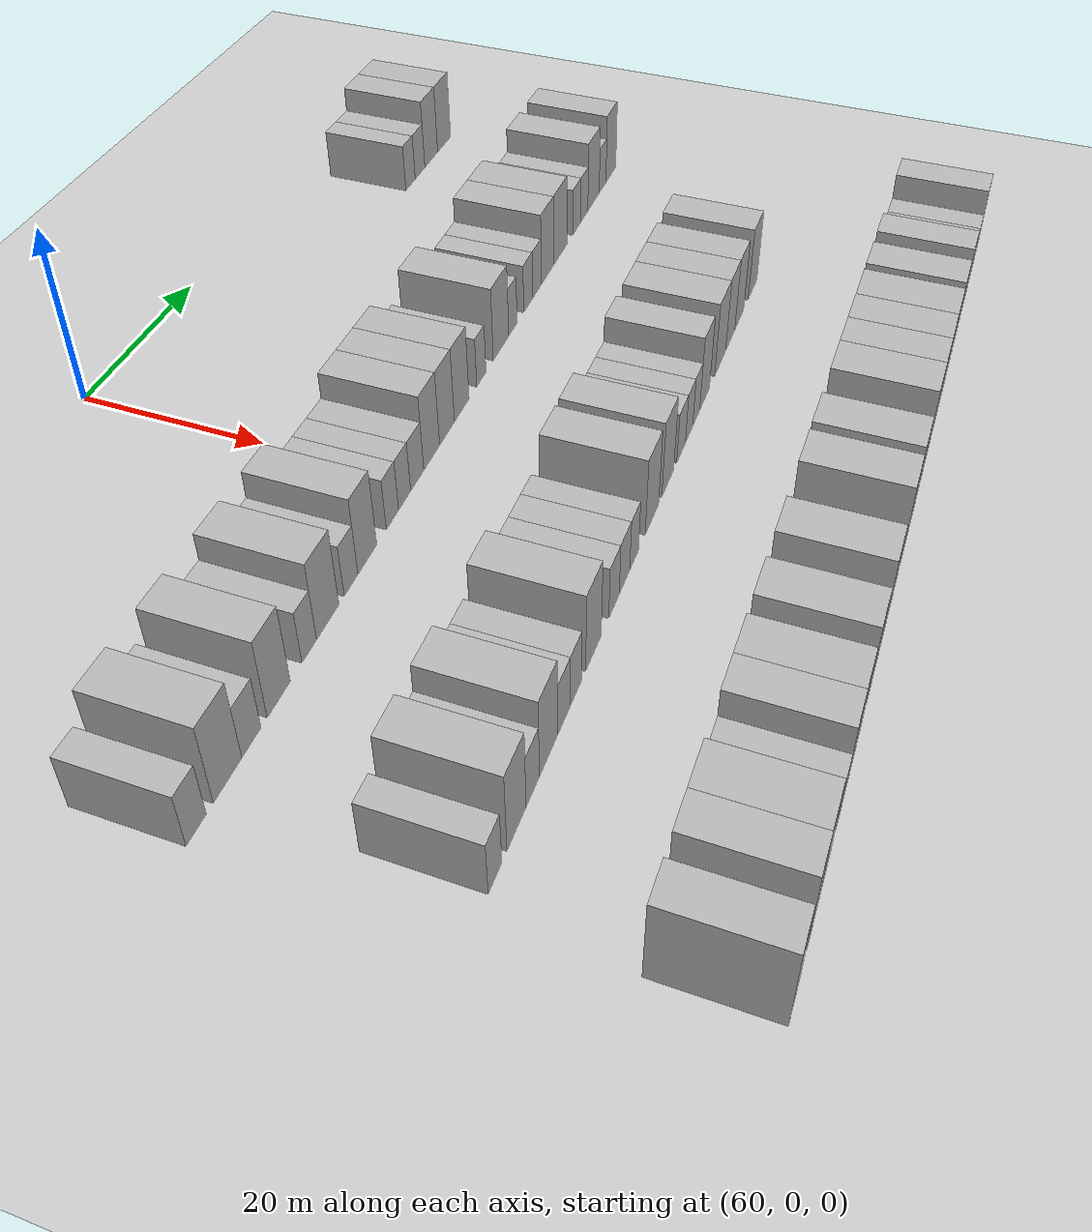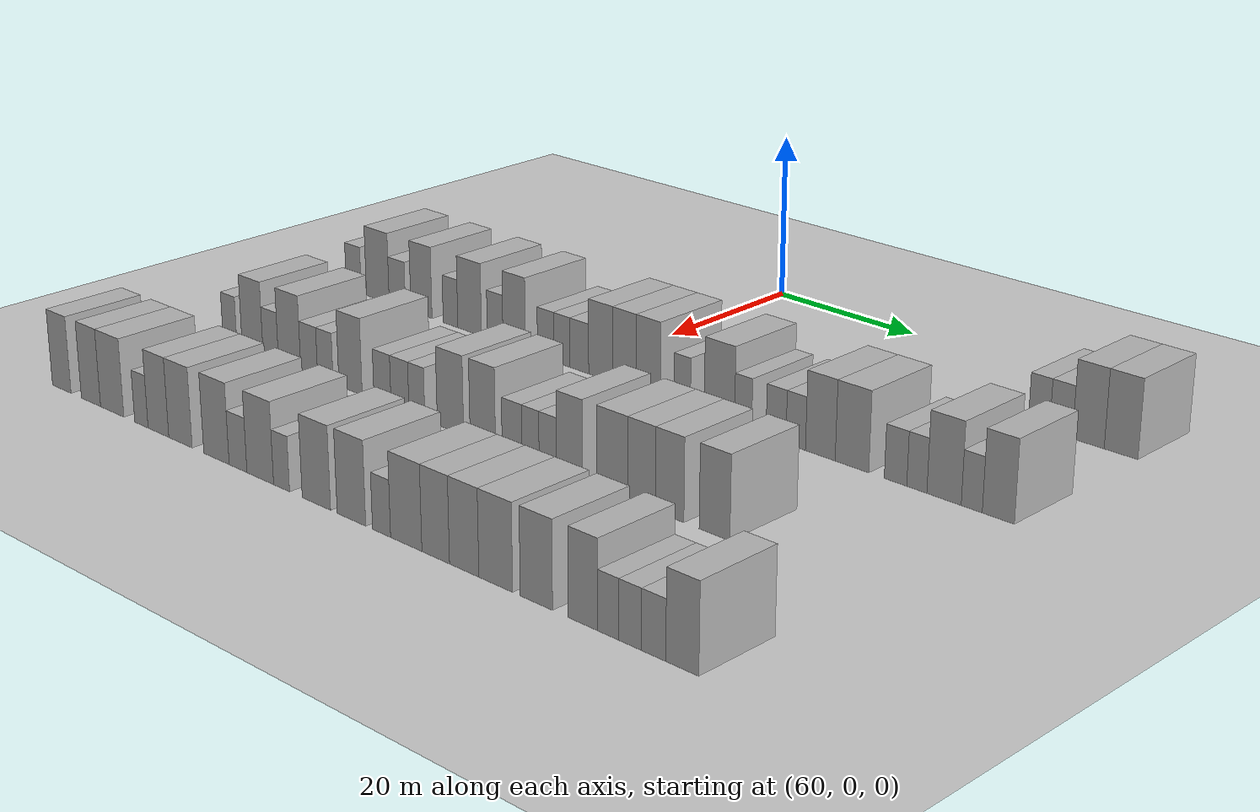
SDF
<sdf version="1.6">
 <world name="default">
  <include>
   <name>ground_plane_2</name>
   <uri>model://HANNAS_ground_plane</uri>
   <pose>100 0 0  0 0 0</pose>
  </include>
  <model name="building_463">
   <static>1</static>
   <pose>69.0000 47.3261 0 0.000000 0.000000 0.000000</pose>
   <link name="link">
    <pose>0 0 3.00 0 0 0</pose>
    <collision name="collision"><geometry><box><size>10.0000 2.7117 6.0000</size></box></geometry></collision>
    <visual name="visual">
     <cast_shadows>0</cast_shadows>
     <geometry><box><size>10.0000 2.7117 6.0000</size></box></geometry>
     <material>
      <script>
       <uri>model://HANNAS_wall/materials/scripts</uri>
       <uri>model://HANNAS_wall/materials/textures</uri>
       <name>vrc/HANNAS_wall</name>
      </script>
     </material>
    </visual>
   </link>
  </model>
  <model name="building_464">
   <static>1</static>
   <pose>69.0000 50.1178 0 0.000000 0.000000 0.000000</pose>
   <link name="link">
    <pose>0 0 3.00 0 0 0</pose>
    <collision name="collision"><geometry><box><size>10.0000 2.8716 6.0000</size></box></geometry></collision>
    <visual name="visual">
     <cast_shadows>0</cast_shadows>
     <geometry><box><size>10.0000 2.8716 6.0000</size></box></geometry>
     <material>
      <script>
       <uri>model://HANNAS_wall/materials/scripts</uri>
       <uri>model://HANNAS_wall/materials/textures</uri>
       <name>vrc/HANNAS_wall</name>
      </script>
     </material>
    </visual>
   </link>
  </model>
  <model name="building_465">
   <static>1</static>
   <pose>69.0000 53.5137 0 0.000000 0.000000 0.000000</pose>
   <link name="link">
    <pose>0 0 4.50 0 0 0</pose>
    <collision name="collision"><geometry><box><size>10.0000 3.9201 9.0000</size></box></geometry></collision>
    <visual name="visual">
     <cast_shadows>0</cast_shadows>
     <geometry><box><size>10.0000 3.9201 9.0000</size></box></geometry>
     <material>
      <script>
       <uri>model://HANNAS_wall/materials/scripts</uri>
       <uri>model://HANNAS_wall/materials/textures</uri>
       <name>vrc/HANNAS_wall</name>
      </script>
     </material>
    </visual>
   </link>
  </model>
  <model name="building_466">
   <static>1</static>
   <pose>69.0000 57.5067 0 0.000000 0.000000 0.000000</pose>
   <link name="link">
    <pose>0 0 4.50 0 0 0</pose>
    <collision name="collision"><geometry><box><size>10.0000 4.0660 9.0000</size></box></geometry></collision>
    <visual name="visual">
     <cast_shadows>0</cast_shadows>
     <geometry><box><size>10.0000 4.0660 9.0000</size></box></geometry>
     <material>
      <script>
       <uri>model://HANNAS_wall/materials/scripts</uri>
       <uri>model://HANNAS_wall/materials/textures</uri>
       <name>vrc/HANNAS_wall</name>
      </script>
     </material>
    </visual>
   </link>
  </model>
  <model name="building_632">
   <static>1</static>
   <pose>91.0000 -39.1412 0 0.000000 0.000000 0.000000</pose>
   <link name="link">
    <pose>0 0 3.00 0 0 0</pose>
    <collision name="collision"><geometry><box><size>10.0000 2.8521 6.0000</size></box></geometry></collision>
    <visual name="visual">
     <cast_shadows>0</cast_shadows>
     <geometry><box><size>10.0000 2.8521 6.0000</size></box></geometry>
     <material>
      <script>
       <uri>model://HANNAS_wall/materials/scripts</uri>
       <uri>model://HANNAS_wall/materials/textures</uri>
       <name>vrc/HANNAS_wall</name>
      </script>
     </material>
    </visual>
   </link>
  </model>
  <model name="building_633">
   <static>1</static>
   <pose>91.0000 -34.5886 0 0.000000 0.000000 0.000000</pose>
   <link name="link">
    <pose>0 0 4.50 0 0 0</pose>
    <collision name="collision"><geometry><box><size>10.0000 4.2531 9.0000</size></box></geometry></collision>
    <visual name="visual">
     <cast_shadows>0</cast_shadows>
     <geometry><box><size>10.0000 4.2531 9.0000</size></box></geometry>
     <material>
      <script>
       <uri>model://HANNAS_wall/materials/scripts</uri>
       <uri>model://HANNAS_wall/materials/textures</uri>
       <name>vrc/HANNAS_wall</name>
      </script>
     </material>
    </visual>
   </link>
  </model>
  <model name="building_634">
   <static>1</static>
   <pose>91.0000 -30.9627 0 0.000000 0.000000 0.000000</pose>
   <link name="link">
    <pose>0 0 3.00 0 0 0</pose>
    <collision name="collision"><geometry><box><size>10.0000 2.9988 6.0000</size></box></geometry></collision>
    <visual name="visual">
     <cast_shadows>0</cast_shadows>
     <geometry><box><size>10.0000 2.9988 6.0000</size></box></geometry>
     <material>
      <script>
       <uri>model://HANNAS_wall/materials/scripts</uri>
       <uri>model://HANNAS_wall/materials/textures</uri>
       <name>vrc/HANNAS_wall</name>
      </script>
     </material>
    </visual>
   </link>
  </model>
  <model name="building_635">
   <static>1</static>
   <pose>91.0000 -26.5580 0 0.000000 0.000000 0.000000</pose>
   <link name="link">
    <pose>0 0 4.50 0 0 0</pose>
    <collision name="collision"><geometry><box><size>10.0000 3.8105 9.0000</size></box></geometry></collision>
    <visual name="visual">
     <cast_shadows>0</cast_shadows>
     <geometry><box><size>10.0000 3.8105 9.0000</size></box></geometry>
     <material>
      <script>
       <uri>model://HANNAS_wall/materials/scripts</uri>
       <uri>model://HANNAS_wall/materials/textures</uri>
       <name>vrc/HANNAS_wall</name>
      </script>
     </material>
    </visual>
   </link>
  </model>
  <model name="building_636">
   <static>1</static>
   <pose>91.0000 -21.3630 0 0.000000 0.000000 0.000000</pose>
   <link name="link">
    <pose>0 0 3.00 0 0 0</pose>
    <collision name="collision"><geometry><box><size>10.0000 2.5795 6.0000</size></box></geometry></collision>
    <visual name="visual">
     <cast_shadows>0</cast_shadows>
     <geometry><box><size>10.0000 2.5795 6.0000</size></box></geometry>
     <material>
      <script>
       <uri>model://HANNAS_wall/materials/scripts</uri>
       <uri>model://HANNAS_wall/materials/textures</uri>
       <name>vrc/HANNAS_wall</name>
      </script>
     </material>
    </visual>
   </link>
  </model>
  <model name="building_637">
   <static>1</static>
   <pose>91.0000 -18.0189 0 0.000000 0.000000 0.000000</pose>
   <link name="link">
    <pose>0 0 4.50 0 0 0</pose>
    <collision name="collision"><geometry><box><size>10.0000 4.1087 9.0000</size></box></geometry></collision>
    <visual name="visual">
     <cast_shadows>0</cast_shadows>
     <geometry><box><size>10.0000 4.1087 9.0000</size></box></geometry>
     <material>
      <script>
       <uri>model://HANNAS_wall/materials/scripts</uri>
       <uri>model://HANNAS_wall/materials/textures</uri>
       <name>vrc/HANNAS_wall</name>
      </script>
     </material>
    </visual>
   </link>
  </model>
  <model name="building_638">
   <static>1</static>
   <pose>91.0000 -13.6319 0 0.000000 0.000000 0.000000</pose>
   <link name="link">
    <pose>0 0 3.00 0 0 0</pose>
    <collision name="collision"><geometry><box><size>10.0000 2.6653 6.0000</size></box></geometry></collision>
    <visual name="visual">
     <cast_shadows>0</cast_shadows>
     <geometry><box><size>10.0000 2.6653 6.0000</size></box></geometry>
     <material>
      <script>
       <uri>model://HANNAS_wall/materials/scripts</uri>
       <uri>model://HANNAS_wall/materials/textures</uri>
       <name>vrc/HANNAS_wall</name>
      </script>
     </material>
    </visual>
   </link>
  </model>
  <model name="building_639">
   <static>1</static>
   <pose>91.0000 -10.4184 0 0.000000 0.000000 0.000000</pose>
   <link name="link">
    <pose>0 0 4.50 0 0 0</pose>
    <collision name="collision"><geometry><box><size>10.0000 3.7618 9.0000</size></box></geometry></collision>
    <visual name="visual">
     <cast_shadows>0</cast_shadows>
     <geometry><box><size>10.0000 3.7618 9.0000</size></box></geometry>
     <material>
      <script>
       <uri>model://HANNAS_wall/materials/scripts</uri>
       <uri>model://HANNAS_wall/materials/textures</uri>
       <name>vrc/HANNAS_wall</name>
      </script>
     </material>
    </visual>
   </link>
  </model>
  <model name="building_640">
   <static>1</static>
   <pose>91.0000 -5.2221 0 0.000000 0.000000 0.000000</pose>
   <link name="link">
    <pose>0 0 3.00 0 0 0</pose>
    <collision name="collision"><geometry><box><size>10.0000 2.6308 6.0000</size></box></geometry></collision>
    <visual name="visual">
     <cast_shadows>0</cast_shadows>
     <geometry><box><size>10.0000 2.6308 6.0000</size></box></geometry>
     <material>
      <script>
       <uri>model://HANNAS_wall/materials/scripts</uri>
       <uri>model://HANNAS_wall/materials/textures</uri>
       <name>vrc/HANNAS_wall</name>
      </script>
     </material>
    </visual>
   </link>
  </model>
  <model name="building_641">
   <static>1</static>
   <pose>91.0000 -2.5835 0 0.000000 0.000000 0.000000</pose>
   <link name="link">
    <pose>0 0 3.00 0 0 0</pose>
    <collision name="collision"><geometry><box><size>10.0000 2.6464 6.0000</size></box></geometry></collision>
    <visual name="visual">
     <cast_shadows>0</cast_shadows>
     <geometry><box><size>10.0000 2.6464 6.0000</size></box></geometry>
     <material>
      <script>
       <uri>model://HANNAS_wall/materials/scripts</uri>
       <uri>model://HANNAS_wall/materials/textures</uri>
       <name>vrc/HANNAS_wall</name>
      </script>
     </material>
    </visual>
   </link>
  </model>
  <model name="building_642">
   <static>1</static>
   <pose>91.0000 0.2250 0 0.000000 0.000000 0.000000</pose>
   <link name="link">
    <pose>0 0 3.00 0 0 0</pose>
    <collision name="collision"><geometry><box><size>10.0000 2.9705 6.0000</size></box></geometry></collision>
    <visual name="visual">
     <cast_shadows>0</cast_shadows>
     <geometry><box><size>10.0000 2.9705 6.0000</size></box></geometry>
     <material>
      <script>
       <uri>model://HANNAS_wall/materials/scripts</uri>
       <uri>model://HANNAS_wall/materials/textures</uri>
       <name>vrc/HANNAS_wall</name>
      </script>
     </material>
    </visual>
   </link>
  </model>
  <model name="building_643">
   <static>1</static>
   <pose>91.0000 3.5686 0 0.000000 0.000000 0.000000</pose>
   <link name="link">
    <pose>0 0 4.50 0 0 0</pose>
    <collision name="collision"><geometry><box><size>10.0000 3.7167 9.0000</size></box></geometry></collision>
    <visual name="visual">
     <cast_shadows>0</cast_shadows>
     <geometry><box><size>10.0000 3.7167 9.0000</size></box></geometry>
     <material>
      <script>
       <uri>model://HANNAS_wall/materials/scripts</uri>
       <uri>model://HANNAS_wall/materials/textures</uri>
       <name>vrc/HANNAS_wall</name>
      </script>
     </material>
    </visual>
   </link>
  </model>
  <model name="building_644">
   <static>1</static>
   <pose>91.0000 7.2337 0 0.000000 0.000000 0.000000</pose>
   <link name="link">
    <pose>0 0 4.50 0 0 0</pose>
    <collision name="collision"><geometry><box><size>10.0000 3.6136 9.0000</size></box></geometry></collision>
    <visual name="visual">
     <cast_shadows>0</cast_shadows>
     <geometry><box><size>10.0000 3.6136 9.0000</size></box></geometry>
     <material>
      <script>
       <uri>model://HANNAS_wall/materials/scripts</uri>
       <uri>model://HANNAS_wall/materials/textures</uri>
       <name>vrc/HANNAS_wall</name>
      </script>
     </material>
    </visual>
   </link>
  </model>
  <model name="building_645">
   <static>1</static>
   <pose>91.0000 10.8877 0 0.000000 0.000000 0.000000</pose>
   <link name="link">
    <pose>0 0 4.50 0 0 0</pose>
    <collision name="collision"><geometry><box><size>10.0000 3.6944 9.0000</size></box></geometry></collision>
    <visual name="visual">
     <cast_shadows>0</cast_shadows>
     <geometry><box><size>10.0000 3.6944 9.0000</size></box></geometry>
     <material>
      <script>
       <uri>model://HANNAS_wall/materials/scripts</uri>
       <uri>model://HANNAS_wall/materials/textures</uri>
       <name>vrc/HANNAS_wall</name>
      </script>
     </material>
    </visual>
   </link>
  </model>
  <model name="building_646">
   <static>1</static>
   <pose>91.0000 15.9579 0 0.000000 0.000000 0.000000</pose>
   <link name="link">
    <pose>0 0 3.00 0 0 0</pose>
    <collision name="collision"><geometry><box><size>10.0000 2.4459 6.0000</size></box></geometry></collision>
    <visual name="visual">
     <cast_shadows>0</cast_shadows>
     <geometry><box><size>10.0000 2.4459 6.0000</size></box></geometry>
     <material>
      <script>
       <uri>model://HANNAS_wall/materials/scripts</uri>
       <uri>model://HANNAS_wall/materials/textures</uri>
       <name>vrc/HANNAS_wall</name>
      </script>
     </material>
    </visual>
   </link>
  </model>
  <model name="building_647">
   <static>1</static>
   <pose>91.0000 21.3521 0 0.000000 0.000000 0.000000</pose>
   <link name="link">
    <pose>0 0 4.50 0 0 0</pose>
    <collision name="collision"><geometry><box><size>10.0000 4.3426 9.0000</size></box></geometry></collision>
    <visual name="visual">
     <cast_shadows>0</cast_shadows>
     <geometry><box><size>10.0000 4.3426 9.0000</size></box></geometry>
     <material>
      <script>
       <uri>model://HANNAS_wall/materials/scripts</uri>
       <uri>model://HANNAS_wall/materials/textures</uri>
       <name>vrc/HANNAS_wall</name>
      </script>
     </material>
    </visual>
   </link>
  </model>
  <model name="building_648">
   <static>1</static>
   <pose>91.0000 24.7327 0 0.000000 0.000000 0.000000</pose>
   <link name="link">
    <pose>0 0 3.00 0 0 0</pose>
    <collision name="collision"><geometry><box><size>10.0000 2.4187 6.0000</size></box></geometry></collision>
    <visual name="visual">
     <cast_shadows>0</cast_shadows>
     <geometry><box><size>10.0000 2.4187 6.0000</size></box></geometry>
     <material>
      <script>
       <uri>model://HANNAS_wall/materials/scripts</uri>
       <uri>model://HANNAS_wall/materials/textures</uri>
       <name>vrc/HANNAS_wall</name>
      </script>
     </material>
    </visual>
   </link>
  </model>
  <model name="building_649">
   <static>1</static>
   <pose>91.0000 29.3119 0 0.000000 0.000000 0.000000</pose>
   <link name="link">
    <pose>0 0 3.00 0 0 0</pose>
    <collision name="collision"><geometry><box><size>10.0000 2.7396 6.0000</size></box></geometry></collision>
    <visual name="visual">
     <cast_shadows>0</cast_shadows>
     <geometry><box><size>10.0000 2.7396 6.0000</size></box></geometry>
     <material>
      <script>
       <uri>model://HANNAS_wall/materials/scripts</uri>
       <uri>model://HANNAS_wall/materials/textures</uri>
       <name>vrc/HANNAS_wall</name>
      </script>
     </material>
    </visual>
   </link>
  </model>
  <model name="building_650">
   <static>1</static>
   <pose>91.0000 32.0061 0 0.000000 0.000000 0.000000</pose>
   <link name="link">
    <pose>0 0 3.00 0 0 0</pose>
    <collision name="collision"><geometry><box><size>10.0000 2.6488 6.0000</size></box></geometry></collision>
    <visual name="visual">
     <cast_shadows>0</cast_shadows>
     <geometry><box><size>10.0000 2.6488 6.0000</size></box></geometry>
     <material>
      <script>
       <uri>model://HANNAS_wall/materials/scripts</uri>
       <uri>model://HANNAS_wall/materials/textures</uri>
       <name>vrc/HANNAS_wall</name>
      </script>
     </material>
    </visual>
   </link>
  </model>
  <model name="building_651">
   <static>1</static>
   <pose>91.0000 35.3113 0 0.000000 0.000000 0.000000</pose>
   <link name="link">
    <pose>0 0 4.50 0 0 0</pose>
    <collision name="collision"><geometry><box><size>10.0000 3.9617 9.0000</size></box></geometry></collision>
    <visual name="visual">
     <cast_shadows>0</cast_shadows>
     <geometry><box><size>10.0000 3.9617 9.0000</size></box></geometry>
     <material>
      <script>
       <uri>model://HANNAS_wall/materials/scripts</uri>
       <uri>model://HANNAS_wall/materials/textures</uri>
       <name>vrc/HANNAS_wall</name>
      </script>
     </material>
    </visual>
   </link>
  </model>
  <model name="building_652">
   <static>1</static>
   <pose>91.0000 39.4792 0 0.000000 0.000000 0.000000</pose>
   <link name="link">
    <pose>0 0 4.50 0 0 0</pose>
    <collision name="collision"><geometry><box><size>10.0000 4.3740 9.0000</size></box></geometry></collision>
    <visual name="visual">
     <cast_shadows>0</cast_shadows>
     <geometry><box><size>10.0000 4.3740 9.0000</size></box></geometry>
     <material>
      <script>
       <uri>model://HANNAS_wall/materials/scripts</uri>
       <uri>model://HANNAS_wall/materials/textures</uri>
       <name>vrc/HANNAS_wall</name>
      </script>
     </material>
    </visual>
   </link>
  </model>
  <model name="building_653">
   <static>1</static>
   <pose>91.0000 45.0833 0 0.000000 0.000000 0.000000</pose>
   <link name="link">
    <pose>0 0 3.00 0 0 0</pose>
    <collision name="collision"><geometry><box><size>10.0000 2.8342 6.0000</size></box></geometry></collision>
    <visual name="visual">
     <cast_shadows>0</cast_shadows>
     <geometry><box><size>10.0000 2.8342 6.0000</size></box></geometry>
     <material>
      <script>
       <uri>model://HANNAS_wall/materials/scripts</uri>
       <uri>model://HANNAS_wall/materials/textures</uri>
       <name>vrc/HANNAS_wall</name>
      </script>
     </material>
    </visual>
   </link>
  </model>
  <model name="building_654">
   <static>1</static>
   <pose>91.0000 47.7532 0 0.000000 0.000000 0.000000</pose>
   <link name="link">
    <pose>0 0 3.00 0 0 0</pose>
    <collision name="collision"><geometry><box><size>10.0000 2.5054 6.0000</size></box></geometry></collision>
    <visual name="visual">
     <cast_shadows>0</cast_shadows>
     <geometry><box><size>10.0000 2.5054 6.0000</size></box></geometry>
     <material>
      <script>
       <uri>model://HANNAS_wall/materials/scripts</uri>
       <uri>model://HANNAS_wall/materials/textures</uri>
       <name>vrc/HANNAS_wall</name>
      </script>
     </material>
    </visual>
   </link>
  </model>
  <model name="building_655">
   <static>1</static>
   <pose>91.0000 51.1051 0 0.000000 0.000000 0.000000</pose>
   <link name="link">
    <pose>0 0 4.50 0 0 0</pose>
    <collision name="collision"><geometry><box><size>10.0000 4.1985 9.0000</size></box></geometry></collision>
    <visual name="visual">
     <cast_shadows>0</cast_shadows>
     <geometry><box><size>10.0000 4.1985 9.0000</size></box></geometry>
     <material>
      <script>
       <uri>model://HANNAS_wall/materials/scripts</uri>
       <uri>model://HANNAS_wall/materials/textures</uri>
       <name>vrc/HANNAS_wall</name>
      </script>
     </material>
    </visual>
   </link>
  </model>
  <model name="building_656">
   <static>1</static>
   <pose>91.0000 54.4667 0 0.000000 0.000000 0.000000</pose>
   <link name="link">
    <pose>0 0 3.00 0 0 0</pose>
    <collision name="collision"><geometry><box><size>10.0000 2.5247 6.0000</size></box></geometry></collision>
    <visual name="visual">
     <cast_shadows>0</cast_shadows>
     <geometry><box><size>10.0000 2.5247 6.0000</size></box></geometry>
     <material>
      <script>
       <uri>model://HANNAS_wall/materials/scripts</uri>
       <uri>model://HANNAS_wall/materials/textures</uri>
       <name>vrc/HANNAS_wall</name>
      </script>
     </material>
    </visual>
   </link>
  </model>
  <model name="building_657">
   <static>1</static>
   <pose>91.0000 57.6247 0 0.000000 0.000000 0.000000</pose>
   <link name="link">
    <pose>0 0 4.50 0 0 0</pose>
    <collision name="collision"><geometry><box><size>10.0000 3.7912 9.0000</size></box></geometry></collision>
    <visual name="visual">
     <cast_shadows>0</cast_shadows>
     <geometry><box><size>10.0000 3.7912 9.0000</size></box></geometry>
     <material>
      <script>
       <uri>model://HANNAS_wall/materials/scripts</uri>
       <uri>model://HANNAS_wall/materials/textures</uri>
       <name>vrc/HANNAS_wall</name>
      </script>
     </material>
    </visual>
   </link>
  </model>
  <model name="building_817">
   <static>1</static>
   <pose>113.0000 -35.4105 0 0.000000 0.000000 0.000000</pose>
   <link name="link">
    <pose>0 0 3.00 0 0 0</pose>
    <collision name="collision"><geometry><box><size>10.0000 2.6126 6.0000</size></box></geometry></collision>
    <visual name="visual">
     <cast_shadows>0</cast_shadows>
     <geometry><box><size>10.0000 2.6126 6.0000</size></box></geometry>
     <material>
      <script>
       <uri>model://HANNAS_wall/materials/scripts</uri>
       <uri>model://HANNAS_wall/materials/textures</uri>
       <name>vrc/HANNAS_wall</name>
      </script>
     </material>
    </visual>
   </link>
  </model>
  <model name="building_818">
   <static>1</static>
   <pose>113.0000 -31.1546 0 0.000000 0.000000 0.000000</pose>
   <link name="link">
    <pose>0 0 4.50 0 0 0</pose>
    <collision name="collision"><geometry><box><size>10.0000 3.8991 9.0000</size></box></geometry></collision>
    <visual name="visual">
     <cast_shadows>0</cast_shadows>
     <geometry><box><size>10.0000 3.8991 9.0000</size></box></geometry>
     <material>
      <script>
       <uri>model://HANNAS_wall/materials/scripts</uri>
       <uri>model://HANNAS_wall/materials/textures</uri>
       <name>vrc/HANNAS_wall</name>
      </script>
     </material>
    </visual>
   </link>
  </model>
  <model name="building_819">
   <static>1</static>
   <pose>113.0000 -27.8004 0 0.000000 0.000000 0.000000</pose>
   <link name="link">
    <pose>0 0 3.00 0 0 0</pose>
    <collision name="collision"><geometry><box><size>10.0000 2.8094 6.0000</size></box></geometry></collision>
    <visual name="visual">
     <cast_shadows>0</cast_shadows>
     <geometry><box><size>10.0000 2.8094 6.0000</size></box></geometry>
     <material>
      <script>
       <uri>model://HANNAS_wall/materials/scripts</uri>
       <uri>model://HANNAS_wall/materials/textures</uri>
       <name>vrc/HANNAS_wall</name>
      </script>
     </material>
    </visual>
   </link>
  </model>
  <model name="building_820">
   <static>1</static>
   <pose>113.0000 -24.3832 0 0.000000 0.000000 0.000000</pose>
   <link name="link">
    <pose>0 0 4.50 0 0 0</pose>
    <collision name="collision"><geometry><box><size>10.0000 4.0250 9.0000</size></box></geometry></collision>
    <visual name="visual">
     <cast_shadows>0</cast_shadows>
     <geometry><box><size>10.0000 4.0250 9.0000</size></box></geometry>
     <material>
      <script>
       <uri>model://HANNAS_wall/materials/scripts</uri>
       <uri>model://HANNAS_wall/materials/textures</uri>
       <name>vrc/HANNAS_wall</name>
      </script>
     </material>
    </visual>
   </link>
  </model>
  <model name="building_821">
   <static>1</static>
   <pose>113.0000 -20.8810 0 0.000000 0.000000 0.000000</pose>
   <link name="link">
    <pose>0 0 3.00 0 0 0</pose>
    <collision name="collision"><geometry><box><size>10.0000 2.9795 6.0000</size></box></geometry></collision>
    <visual name="visual">
     <cast_shadows>0</cast_shadows>
     <geometry><box><size>10.0000 2.9795 6.0000</size></box></geometry>
     <material>
      <script>
       <uri>model://HANNAS_wall/materials/scripts</uri>
       <uri>model://HANNAS_wall/materials/textures</uri>
       <name>vrc/HANNAS_wall</name>
      </script>
     </material>
    </visual>
   </link>
  </model>
  <model name="building_822">
   <static>1</static>
   <pose>113.0000 -18.0344 0 0.000000 0.000000 0.000000</pose>
   <link name="link">
    <pose>0 0 3.00 0 0 0</pose>
    <collision name="collision"><geometry><box><size>10.0000 2.7137 6.0000</size></box></geometry></collision>
    <visual name="visual">
     <cast_shadows>0</cast_shadows>
     <geometry><box><size>10.0000 2.7137 6.0000</size></box></geometry>
     <material>
      <script>
       <uri>model://HANNAS_wall/materials/scripts</uri>
       <uri>model://HANNAS_wall/materials/textures</uri>
       <name>vrc/HANNAS_wall</name>
      </script>
     </material>
    </visual>
   </link>
  </model>
  <model name="building_823">
   <static>1</static>
   <pose>113.0000 -13.6931 0 0.000000 0.000000 0.000000</pose>
   <link name="link">
    <pose>0 0 4.50 0 0 0</pose>
    <collision name="collision"><geometry><box><size>10.0000 3.9688 9.0000</size></box></geometry></collision>
    <visual name="visual">
     <cast_shadows>0</cast_shadows>
     <geometry><box><size>10.0000 3.9688 9.0000</size></box></geometry>
     <material>
      <script>
       <uri>model://HANNAS_wall/materials/scripts</uri>
       <uri>model://HANNAS_wall/materials/textures</uri>
       <name>vrc/HANNAS_wall</name>
      </script>
     </material>
    </visual>
   </link>
  </model>
  <model name="building_824">
   <static>1</static>
   <pose>113.0000 -8.2909 0 0.000000 0.000000 0.000000</pose>
   <link name="link">
    <pose>0 0 3.00 0 0 0</pose>
    <collision name="collision"><geometry><box><size>10.0000 2.8356 6.0000</size></box></geometry></collision>
    <visual name="visual">
     <cast_shadows>0</cast_shadows>
     <geometry><box><size>10.0000 2.8356 6.0000</size></box></geometry>
     <material>
      <script>
       <uri>model://HANNAS_wall/materials/scripts</uri>
       <uri>model://HANNAS_wall/materials/textures</uri>
       <name>vrc/HANNAS_wall</name>
      </script>
     </material>
    </visual>
   </link>
  </model>
  <model name="building_825">
   <static>1</static>
   <pose>113.0000 -5.4020 0 0.000000 0.000000 0.000000</pose>
   <link name="link">
    <pose>0 0 3.00 0 0 0</pose>
    <collision name="collision"><geometry><box><size>10.0000 2.9423 6.0000</size></box></geometry></collision>
    <visual name="visual">
     <cast_shadows>0</cast_shadows>
     <geometry><box><size>10.0000 2.9423 6.0000</size></box></geometry>
     <material>
      <script>
       <uri>model://HANNAS_wall/materials/scripts</uri>
       <uri>model://HANNAS_wall/materials/textures</uri>
       <name>vrc/HANNAS_wall</name>
      </script>
     </material>
    </visual>
   </link>
  </model>
  <model name="building_826">
   <static>1</static>
   <pose>113.0000 -2.6511 0 0.000000 0.000000 0.000000</pose>
   <link name="link">
    <pose>0 0 3.00 0 0 0</pose>
    <collision name="collision"><geometry><box><size>10.0000 2.5594 6.0000</size></box></geometry></collision>
    <visual name="visual">
     <cast_shadows>0</cast_shadows>
     <geometry><box><size>10.0000 2.5594 6.0000</size></box></geometry>
     <material>
      <script>
       <uri>model://HANNAS_wall/materials/scripts</uri>
       <uri>model://HANNAS_wall/materials/textures</uri>
       <name>vrc/HANNAS_wall</name>
      </script>
     </material>
    </visual>
   </link>
  </model>
  <model name="building_827">
   <static>1</static>
   <pose>113.0000 2.6977 0 0.000000 0.000000 0.000000</pose>
   <link name="link">
    <pose>0 0 4.50 0 0 0</pose>
    <collision name="collision"><geometry><box><size>10.0000 4.1383 9.0000</size></box></geometry></collision>
    <visual name="visual">
     <cast_shadows>0</cast_shadows>
     <geometry><box><size>10.0000 4.1383 9.0000</size></box></geometry>
     <material>
      <script>
       <uri>model://HANNAS_wall/materials/scripts</uri>
       <uri>model://HANNAS_wall/materials/textures</uri>
       <name>vrc/HANNAS_wall</name>
      </script>
     </material>
    </visual>
   </link>
  </model>
  <model name="building_828">
   <static>1</static>
   <pose>113.0000 7.7173 0 0.000000 0.000000 0.000000</pose>
   <link name="link">
    <pose>0 0 4.50 0 0 0</pose>
    <collision name="collision"><geometry><box><size>10.0000 3.9009 9.0000</size></box></geometry></collision>
    <visual name="visual">
     <cast_shadows>0</cast_shadows>
     <geometry><box><size>10.0000 3.9009 9.0000</size></box></geometry>
     <material>
      <script>
       <uri>model://HANNAS_wall/materials/scripts</uri>
       <uri>model://HANNAS_wall/materials/textures</uri>
       <name>vrc/HANNAS_wall</name>
      </script>
     </material>
    </visual>
   </link>
  </model>
  <model name="building_829">
   <static>1</static>
   <pose>113.0000 12.1439 0 0.000000 0.000000 0.000000</pose>
   <link name="link">
    <pose>0 0 3.00 0 0 0</pose>
    <collision name="collision"><geometry><box><size>10.0000 2.9522 6.0000</size></box></geometry></collision>
    <visual name="visual">
     <cast_shadows>0</cast_shadows>
     <geometry><box><size>10.0000 2.9522 6.0000</size></box></geometry>
     <material>
      <script>
       <uri>model://HANNAS_wall/materials/scripts</uri>
       <uri>model://HANNAS_wall/materials/textures</uri>
       <name>vrc/HANNAS_wall</name>
      </script>
     </material>
    </visual>
   </link>
  </model>
  <model name="building_830">
   <static>1</static>
   <pose>113.0000 14.8916 0 0.000000 0.000000 0.000000</pose>
   <link name="link">
    <pose>0 0 3.00 0 0 0</pose>
    <collision name="collision"><geometry><box><size>10.0000 2.5433 6.0000</size></box></geometry></collision>
    <visual name="visual">
     <cast_shadows>0</cast_shadows>
     <geometry><box><size>10.0000 2.5433 6.0000</size></box></geometry>
     <material>
      <script>
       <uri>model://HANNAS_wall/materials/scripts</uri>
       <uri>model://HANNAS_wall/materials/textures</uri>
       <name>vrc/HANNAS_wall</name>
      </script>
     </material>
    </visual>
   </link>
  </model>
  <model name="building_831">
   <static>1</static>
   <pose>113.0000 17.4319 0 0.000000 0.000000 0.000000</pose>
   <link name="link">
    <pose>0 0 3.00 0 0 0</pose>
    <collision name="collision"><geometry><box><size>10.0000 2.5372 6.0000</size></box></geometry></collision>
    <visual name="visual">
     <cast_shadows>0</cast_shadows>
     <geometry><box><size>10.0000 2.5372 6.0000</size></box></geometry>
     <material>
      <script>
       <uri>model://HANNAS_wall/materials/scripts</uri>
       <uri>model://HANNAS_wall/materials/textures</uri>
       <name>vrc/HANNAS_wall</name>
      </script>
     </material>
    </visual>
   </link>
  </model>
  <model name="building_832">
   <static>1</static>
   <pose>113.0000 20.5374 0 0.000000 0.000000 0.000000</pose>
   <link name="link">
    <pose>0 0 4.50 0 0 0</pose>
    <collision name="collision"><geometry><box><size>10.0000 3.6738 9.0000</size></box></geometry></collision>
    <visual name="visual">
     <cast_shadows>0</cast_shadows>
     <geometry><box><size>10.0000 3.6738 9.0000</size></box></geometry>
     <material>
      <script>
       <uri>model://HANNAS_wall/materials/scripts</uri>
       <uri>model://HANNAS_wall/materials/textures</uri>
       <name>vrc/HANNAS_wall</name>
      </script>
     </material>
    </visual>
   </link>
  </model>
  <model name="building_833">
   <static>1</static>
   <pose>113.0000 26.5249 0 0.000000 0.000000 0.000000</pose>
   <link name="link">
    <pose>0 0 4.50 0 0 0</pose>
    <collision name="collision"><geometry><box><size>10.0000 4.3013 9.0000</size></box></geometry></collision>
    <visual name="visual">
     <cast_shadows>0</cast_shadows>
     <geometry><box><size>10.0000 4.3013 9.0000</size></box></geometry>
     <material>
      <script>
       <uri>model://HANNAS_wall/materials/scripts</uri>
       <uri>model://HANNAS_wall/materials/textures</uri>
       <name>vrc/HANNAS_wall</name>
      </script>
     </material>
    </visual>
   </link>
  </model>
  <model name="building_834">
   <static>1</static>
   <pose>113.0000 30.5512 0 0.000000 0.000000 0.000000</pose>
   <link name="link">
    <pose>0 0 4.50 0 0 0</pose>
    <collision name="collision"><geometry><box><size>10.0000 3.7512 9.0000</size></box></geometry></collision>
    <visual name="visual">
     <cast_shadows>0</cast_shadows>
     <geometry><box><size>10.0000 3.7512 9.0000</size></box></geometry>
     <material>
      <script>
       <uri>model://HANNAS_wall/materials/scripts</uri>
       <uri>model://HANNAS_wall/materials/textures</uri>
       <name>vrc/HANNAS_wall</name>
      </script>
     </material>
    </visual>
   </link>
  </model>
  <model name="building_835">
   <static>1</static>
   <pose>113.0000 34.3239 0 0.000000 0.000000 0.000000</pose>
   <link name="link">
    <pose>0 0 4.50 0 0 0</pose>
    <collision name="collision"><geometry><box><size>10.0000 3.7941 9.0000</size></box></geometry></collision>
    <visual name="visual">
     <cast_shadows>0</cast_shadows>
     <geometry><box><size>10.0000 3.7941 9.0000</size></box></geometry>
     <material>
      <script>
       <uri>model://HANNAS_wall/materials/scripts</uri>
       <uri>model://HANNAS_wall/materials/textures</uri>
       <name>vrc/HANNAS_wall</name>
      </script>
     </material>
    </visual>
   </link>
  </model>
  <model name="building_836">
   <static>1</static>
   <pose>113.0000 40.1877 0 0.000000 0.000000 0.000000</pose>
   <link name="link">
    <pose>0 0 4.50 0 0 0</pose>
    <collision name="collision"><geometry><box><size>10.0000 3.9336 9.0000</size></box></geometry></collision>
    <visual name="visual">
     <cast_shadows>0</cast_shadows>
     <geometry><box><size>10.0000 3.9336 9.0000</size></box></geometry>
     <material>
      <script>
       <uri>model://HANNAS_wall/materials/scripts</uri>
       <uri>model://HANNAS_wall/materials/textures</uri>
       <name>vrc/HANNAS_wall</name>
      </script>
     </material>
    </visual>
   </link>
  </model>
  <model name="building_998">
   <static>1</static>
   <pose>135.0000 -37.0936 0 0.000000 0.000000 0.000000</pose>
   <link name="link">
    <pose>0 0 4.50 0 0 0</pose>
    <collision name="collision"><geometry><box><size>10.0000 3.6096 9.0000</size></box></geometry></collision>
    <visual name="visual">
     <cast_shadows>0</cast_shadows>
     <geometry><box><size>10.0000 3.6096 9.0000</size></box></geometry>
     <material>
      <script>
       <uri>model://HANNAS_wall/materials/scripts</uri>
       <uri>model://HANNAS_wall/materials/textures</uri>
       <name>vrc/HANNAS_wall</name>
      </script>
     </material>
    </visual>
   </link>
  </model>
  <model name="building_999">
   <static>1</static>
   <pose>135.0000 -31.4700 0 0.000000 0.000000 0.000000</pose>
   <link name="link">
    <pose>0 0 4.50 0 0 0</pose>
    <collision name="collision"><geometry><box><size>10.0000 3.6375 9.0000</size></box></geometry></collision>
    <visual name="visual">
     <cast_shadows>0</cast_shadows>
     <geometry><box><size>10.0000 3.6375 9.0000</size></box></geometry>
     <material>
      <script>
       <uri>model://HANNAS_wall/materials/scripts</uri>
       <uri>model://HANNAS_wall/materials/textures</uri>
       <name>vrc/HANNAS_wall</name>
      </script>
     </material>
    </visual>
   </link>
  </model>
  <model name="building_1000">
   <static>1</static>
   <pose>135.0000 -27.4874 0 0.000000 0.000000 0.000000</pose>
   <link name="link">
    <pose>0 0 4.50 0 0 0</pose>
    <collision name="collision"><geometry><box><size>10.0000 4.3277 9.0000</size></box></geometry></collision>
    <visual name="visual">
     <cast_shadows>0</cast_shadows>
     <geometry><box><size>10.0000 4.3277 9.0000</size></box></geometry>
     <material>
      <script>
       <uri>model://HANNAS_wall/materials/scripts</uri>
       <uri>model://HANNAS_wall/materials/textures</uri>
       <name>vrc/HANNAS_wall</name>
      </script>
     </material>
    </visual>
   </link>
  </model>
  <model name="building_1001">
   <static>1</static>
   <pose>135.0000 -22.1176 0 0.000000 0.000000 0.000000</pose>
   <link name="link">
    <pose>0 0 3.00 0 0 0</pose>
    <collision name="collision"><geometry><box><size>10.0000 2.4119 6.0000</size></box></geometry></collision>
    <visual name="visual">
     <cast_shadows>0</cast_shadows>
     <geometry><box><size>10.0000 2.4119 6.0000</size></box></geometry>
     <material>
      <script>
       <uri>model://HANNAS_wall/materials/scripts</uri>
       <uri>model://HANNAS_wall/materials/textures</uri>
       <name>vrc/HANNAS_wall</name>
      </script>
     </material>
    </visual>
   </link>
  </model>
  <model name="building_1002">
   <static>1</static>
   <pose>135.0000 -19.0695 0 0.000000 0.000000 0.000000</pose>
   <link name="link">
    <pose>0 0 4.50 0 0 0</pose>
    <collision name="collision"><geometry><box><size>10.0000 3.6844 9.0000</size></box></geometry></collision>
    <visual name="visual">
     <cast_shadows>0</cast_shadows>
     <geometry><box><size>10.0000 3.6844 9.0000</size></box></geometry>
     <material>
      <script>
       <uri>model://HANNAS_wall/materials/scripts</uri>
       <uri>model://HANNAS_wall/materials/textures</uri>
       <name>vrc/HANNAS_wall</name>
      </script>
     </material>
    </visual>
   </link>
  </model>
  <model name="building_1003">
   <static>1</static>
   <pose>135.0000 -15.1823 0 0.000000 0.000000 0.000000</pose>
   <link name="link">
    <pose>0 0 4.50 0 0 0</pose>
    <collision name="collision"><geometry><box><size>10.0000 4.0901 9.0000</size></box></geometry></collision>
    <visual name="visual">
     <cast_shadows>0</cast_shadows>
     <geometry><box><size>10.0000 4.0901 9.0000</size></box></geometry>
     <material>
      <script>
       <uri>model://HANNAS_wall/materials/scripts</uri>
       <uri>model://HANNAS_wall/materials/textures</uri>
       <name>vrc/HANNAS_wall</name>
      </script>
     </material>
    </visual>
   </link>
  </model>
  <model name="building_1004">
   <static>1</static>
   <pose>135.0000 -8.9975 0 0.000000 0.000000 0.000000</pose>
   <link name="link">
    <pose>0 0 4.50 0 0 0</pose>
    <collision name="collision"><geometry><box><size>10.0000 4.2796 9.0000</size></box></geometry></collision>
    <visual name="visual">
     <cast_shadows>0</cast_shadows>
     <geometry><box><size>10.0000 4.2796 9.0000</size></box></geometry>
     <material>
      <script>
       <uri>model://HANNAS_wall/materials/scripts</uri>
       <uri>model://HANNAS_wall/materials/textures</uri>
       <name>vrc/HANNAS_wall</name>
      </script>
     </material>
    </visual>
   </link>
  </model>
  <model name="building_1005">
   <static>1</static>
   <pose>135.0000 -5.3852 0 0.000000 0.000000 0.000000</pose>
   <link name="link">
    <pose>0 0 3.00 0 0 0</pose>
    <collision name="collision"><geometry><box><size>10.0000 2.9450 6.0000</size></box></geometry></collision>
    <visual name="visual">
     <cast_shadows>0</cast_shadows>
     <geometry><box><size>10.0000 2.9450 6.0000</size></box></geometry>
     <material>
      <script>
       <uri>model://HANNAS_wall/materials/scripts</uri>
       <uri>model://HANNAS_wall/materials/textures</uri>
       <name>vrc/HANNAS_wall</name>
      </script>
     </material>
    </visual>
   </link>
  </model>
  <model name="building_1006">
   <static>1</static>
   <pose>135.0000 -1.7454 0 0.000000 0.000000 0.000000</pose>
   <link name="link">
    <pose>0 0 4.50 0 0 0</pose>
    <collision name="collision"><geometry><box><size>10.0000 4.3346 9.0000</size></box></geometry></collision>
    <visual name="visual">
     <cast_shadows>0</cast_shadows>
     <geometry><box><size>10.0000 4.3346 9.0000</size></box></geometry>
     <material>
      <script>
       <uri>model://HANNAS_wall/materials/scripts</uri>
       <uri>model://HANNAS_wall/materials/textures</uri>
       <name>vrc/HANNAS_wall</name>
      </script>
     </material>
    </visual>
   </link>
  </model>
  <model name="building_1007">
   <static>1</static>
   <pose>135.0000 1.6906 0 0.000000 0.000000 0.000000</pose>
   <link name="link">
    <pose>0 0 3.00 0 0 0</pose>
    <collision name="collision"><geometry><box><size>10.0000 2.5374 6.0000</size></box></geometry></collision>
    <visual name="visual">
     <cast_shadows>0</cast_shadows>
     <geometry><box><size>10.0000 2.5374 6.0000</size></box></geometry>
     <material>
      <script>
       <uri>model://HANNAS_wall/materials/scripts</uri>
       <uri>model://HANNAS_wall/materials/textures</uri>
       <name>vrc/HANNAS_wall</name>
      </script>
     </material>
    </visual>
   </link>
  </model>
  <model name="building_1008">
   <static>1</static>
   <pose>135.0000 7.1547 0 0.000000 0.000000 0.000000</pose>
   <link name="link">
    <pose>0 0 4.50 0 0 0</pose>
    <collision name="collision"><geometry><box><size>10.0000 4.3908 9.0000</size></box></geometry></collision>
    <visual name="visual">
     <cast_shadows>0</cast_shadows>
     <geometry><box><size>10.0000 4.3908 9.0000</size></box></geometry>
     <material>
      <script>
       <uri>model://HANNAS_wall/materials/scripts</uri>
       <uri>model://HANNAS_wall/materials/textures</uri>
       <name>vrc/HANNAS_wall</name>
      </script>
     </material>
    </visual>
   </link>
  </model>
  <model name="building_1009">
   <static>1</static>
   <pose>135.0000 12.4948 0 0.000000 0.000000 0.000000</pose>
   <link name="link">
    <pose>0 0 4.50 0 0 0</pose>
    <collision name="collision"><geometry><box><size>10.0000 4.2894 9.0000</size></box></geometry></collision>
    <visual name="visual">
     <cast_shadows>0</cast_shadows>
     <geometry><box><size>10.0000 4.2894 9.0000</size></box></geometry>
     <material>
      <script>
       <uri>model://HANNAS_wall/materials/scripts</uri>
       <uri>model://HANNAS_wall/materials/textures</uri>
       <name>vrc/HANNAS_wall</name>
      </script>
     </material>
    </visual>
   </link>
  </model>
  <model name="building_1010">
   <static>1</static>
   <pose>135.0000 16.9633 0 0.000000 0.000000 0.000000</pose>
   <link name="link">
    <pose>0 0 3.00 0 0 0</pose>
    <collision name="collision"><geometry><box><size>10.0000 2.6476 6.0000</size></box></geometry></collision>
    <visual name="visual">
     <cast_shadows>0</cast_shadows>
     <geometry><box><size>10.0000 2.6476 6.0000</size></box></geometry>
     <material>
      <script>
       <uri>model://HANNAS_wall/materials/scripts</uri>
       <uri>model://HANNAS_wall/materials/textures</uri>
       <name>vrc/HANNAS_wall</name>
      </script>
     </material>
    </visual>
   </link>
  </model>
  <model name="building_1011">
   <static>1</static>
   <pose>135.0000 20.5306 0 0.000000 0.000000 0.000000</pose>
   <link name="link">
    <pose>0 0 4.50 0 0 0</pose>
    <collision name="collision"><geometry><box><size>10.0000 4.4869 9.0000</size></box></geometry></collision>
    <visual name="visual">
     <cast_shadows>0</cast_shadows>
     <geometry><box><size>10.0000 4.4869 9.0000</size></box></geometry>
     <material>
      <script>
       <uri>model://HANNAS_wall/materials/scripts</uri>
       <uri>model://HANNAS_wall/materials/textures</uri>
       <name>vrc/HANNAS_wall</name>
      </script>
     </material>
    </visual>
   </link>
  </model>
  <model name="building_1012">
   <static>1</static>
   <pose>135.0000 24.7076 0 0.000000 0.000000 0.000000</pose>
   <link name="link">
    <pose>0 0 4.50 0 0 0</pose>
    <collision name="collision"><geometry><box><size>10.0000 3.8672 9.0000</size></box></geometry></collision>
    <visual name="visual">
     <cast_shadows>0</cast_shadows>
     <geometry><box><size>10.0000 3.8672 9.0000</size></box></geometry>
     <material>
      <script>
       <uri>model://HANNAS_wall/materials/scripts</uri>
       <uri>model://HANNAS_wall/materials/textures</uri>
       <name>vrc/HANNAS_wall</name>
      </script>
     </material>
    </visual>
   </link>
  </model>
  <model name="building_1013">
   <static>1</static>
   <pose>135.0000 28.6488 0 0.000000 0.000000 0.000000</pose>
   <link name="link">
    <pose>0 0 4.50 0 0 0</pose>
    <collision name="collision"><geometry><box><size>10.0000 4.0151 9.0000</size></box></geometry></collision>
    <visual name="visual">
     <cast_shadows>0</cast_shadows>
     <geometry><box><size>10.0000 4.0151 9.0000</size></box></geometry>
     <material>
      <script>
       <uri>model://HANNAS_wall/materials/scripts</uri>
       <uri>model://HANNAS_wall/materials/textures</uri>
       <name>vrc/HANNAS_wall</name>
      </script>
     </material>
    </visual>
   </link>
  </model>
  <model name="building_1014">
   <static>1</static>
   <pose>135.0000 32.9021 0 0.000000 0.000000 0.000000</pose>
   <link name="link">
    <pose>0 0 4.50 0 0 0</pose>
    <collision name="collision"><geometry><box><size>10.0000 4.4917 9.0000</size></box></geometry></collision>
    <visual name="visual">
     <cast_shadows>0</cast_shadows>
     <geometry><box><size>10.0000 4.4917 9.0000</size></box></geometry>
     <material>
      <script>
       <uri>model://HANNAS_wall/materials/scripts</uri>
       <uri>model://HANNAS_wall/materials/textures</uri>
       <name>vrc/HANNAS_wall</name>
      </script>
     </material>
    </visual>
   </link>
  </model>
  <model name="building_1015">
   <static>1</static>
   <pose>135.0000 38.2326 0 0.000000 0.000000 0.000000</pose>
   <link name="link">
    <pose>0 0 4.50 0 0 0</pose>
    <collision name="collision"><geometry><box><size>10.0000 4.1693 9.0000</size></box></geometry></collision>
    <visual name="visual">
     <cast_shadows>0</cast_shadows>
     <geometry><box><size>10.0000 4.1693 9.0000</size></box></geometry>
     <material>
      <script>
       <uri>model://HANNAS_wall/materials/scripts</uri>
       <uri>model://HANNAS_wall/materials/textures</uri>
       <name>vrc/HANNAS_wall</name>
      </script>
     </material>
    </visual>
   </link>
  </model>
  <model name="building_1016">
   <static>1</static>
   <pose>135.0000 44.1435 0 0.000000 0.000000 0.000000</pose>
   <link name="link">
    <pose>0 0 4.50 0 0 0</pose>
    <collision name="collision"><geometry><box><size>10.0000 3.6525 9.0000</size></box></geometry></collision>
    <visual name="visual">
     <cast_shadows>0</cast_shadows>
     <geometry><box><size>10.0000 3.6525 9.0000</size></box></geometry>
     <material>
      <script>
       <uri>model://HANNAS_wall/materials/scripts</uri>
       <uri>model://HANNAS_wall/materials/textures</uri>
       <name>vrc/HANNAS_wall</name>
      </script>
     </material>
    </visual>
   </link>
  </model>
  <model name="building_1017">
   <static>1</static>
   <pose>135.0000 47.2594 0 0.000000 0.000000 0.000000</pose>
   <link name="link">
    <pose>0 0 3.00 0 0 0</pose>
    <collision name="collision"><geometry><box><size>10.0000 2.5793 6.0000</size></box></geometry></collision>
    <visual name="visual">
     <cast_shadows>0</cast_shadows>
     <geometry><box><size>10.0000 2.5793 6.0000</size></box></geometry>
     <material>
      <script>
       <uri>model://HANNAS_wall/materials/scripts</uri>
       <uri>model://HANNAS_wall/materials/textures</uri>
       <name>vrc/HANNAS_wall</name>
      </script>
     </material>
    </visual>
   </link>
  </model>
  <model name="building_1018">
   <static>1</static>
   <pose>135.0000 49.9040 0 0.000000 0.000000 0.000000</pose>
   <link name="link">
    <pose>0 0 3.00 0 0 0</pose>
    <collision name="collision"><geometry><box><size>10.0000 2.7098 6.0000</size></box></geometry></collision>
    <visual name="visual">
     <cast_shadows>0</cast_shadows>
     <geometry><box><size>10.0000 2.7098 6.0000</size></box></geometry>
     <material>
      <script>
       <uri>model://HANNAS_wall/materials/scripts</uri>
       <uri>model://HANNAS_wall/materials/textures</uri>
       <name>vrc/HANNAS_wall</name>
      </script>
     </material>
    </visual>
   </link>
  </model>
  <model name="building_1019">
   <static>1</static>
   <pose>135.0000 52.6909 0 0.000000 0.000000 0.000000</pose>
   <link name="link">
    <pose>0 0 3.00 0 0 0</pose>
    <collision name="collision"><geometry><box><size>10.0000 2.8641 6.0000</size></box></geometry></collision>
    <visual name="visual">
     <cast_shadows>0</cast_shadows>
     <geometry><box><size>10.0000 2.8641 6.0000</size></box></geometry>
     <material>
      <script>
       <uri>model://HANNAS_wall/materials/scripts</uri>
       <uri>model://HANNAS_wall/materials/textures</uri>
       <name>vrc/HANNAS_wall</name>
      </script>
     </material>
    </visual>
   </link>
  </model>
  <model name="building_1020">
   <static>1</static>
   <pose>135.0000 56.0317 0 0.000000 0.000000 0.000000</pose>
   <link name="link">
    <pose>0 0 4.50 0 0 0</pose>
    <collision name="collision"><geometry><box><size>10.0000 3.8174 9.0000</size></box></geometry></collision>
    <visual name="visual">
     <cast_shadows>0</cast_shadows>
     <geometry><box><size>10.0000 3.8174 9.0000</size></box></geometry>
     <material>
      <script>
       <uri>model://HANNAS_wall/materials/scripts</uri>
       <uri>model://HANNAS_wall/materials/textures</uri>
       <name>vrc/HANNAS_wall</name>
      </script>
     </material>
    </visual>
   </link>
  </model>
 </world>
</sdf>
